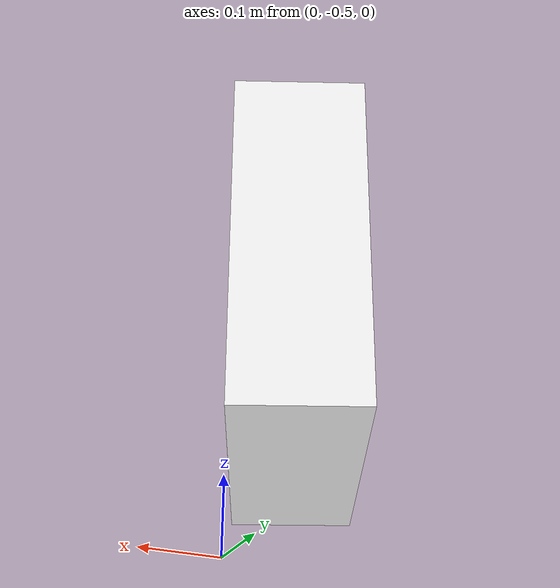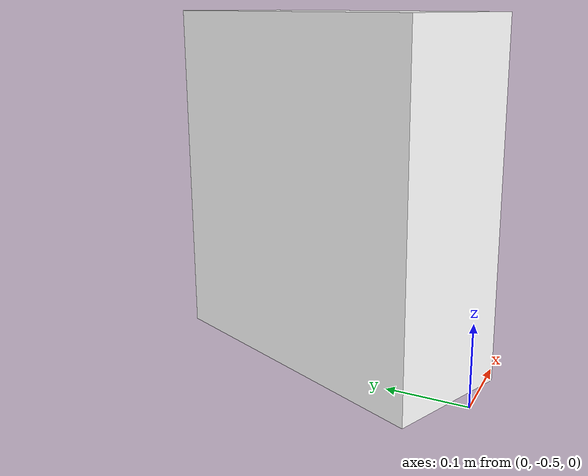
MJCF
<mujoco>
  <compiler angle="radian" />

  <visual>
    <headlight ambient="0.1 0.1 0.1" />
  </visual>

  <asset>
    <material name="white" rgba="1 1 1 1" />
    <material name="goal" rgba="0 0 0 0.3" />
  </asset>

  <option gravity="0 0 -9.8" />
  <worldbody>
    <body name="obj1" pos="-0.0189405848282847 -0.33836799858663935 0.24" quat="0.9805563754385869 -0.0 -0.0 -0.19623759728130888">
      <joint type="free" />
      <inertial pos="0 0 0" mass="1" diaginertia="0.01 0.01 0.01" />
      <geom type="box" size="0.07 0.17500000000000002 0.19" material="white" />

    </body>

  </worldbody>
</mujoco>
